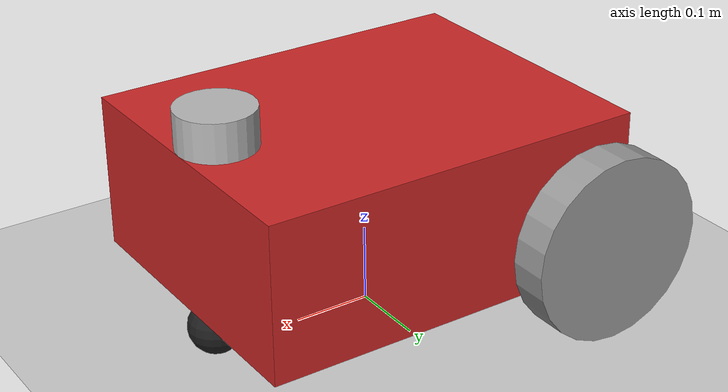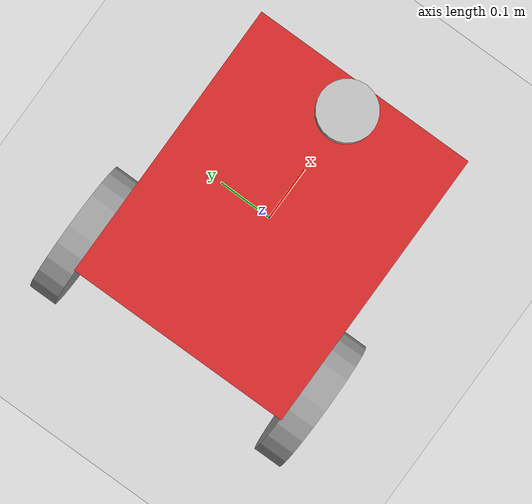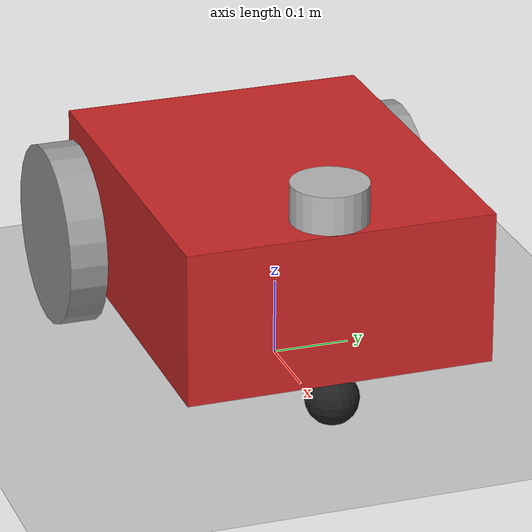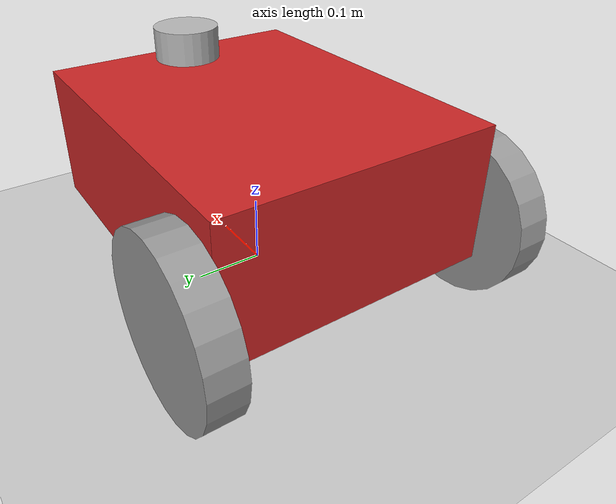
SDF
<sdf version="1.6">
 <world name="default">
  <light name="sun" type="directional">
   <pose>0 0 10 0 -0 0</pose>
   <diffuse>0.8 0.8 0.8 1</diffuse>
   <specular>0.2 0.2 0.2 1</specular>
   <attenuation>
    <range>1000</range>
    <constant>0.9</constant>
    <linear>0.01</linear>
    <quadratic>0.001</quadratic>
   </attenuation>
   <direction>-0.5 0.1 -0.9</direction>
  </light>
  <model name="ground_plane">
   <static>1</static>
   <link name="link">
    <collision name="collision">
     <geometry><plane><normal>0 0 1</normal><size>100 100</size></plane></geometry>
     <surface><friction><ode><mu>100</mu><mu2>50</mu2></ode></friction></surface>
    </collision>
    <visual name="visual">
     <cast_shadows>0</cast_shadows>
     <geometry><plane><normal>0 0 1</normal><size>100 100</size></plane></geometry>
     <material>
      <script><uri>file://media/materials/scripts/gazebo.material</uri><name>Gazebo/Grey</name></script>
     </material>
    </visual>
   </link>
  </model>
  <gravity>0 0 -9.8</gravity>
  <magnetic_field>6e-06 2.3e-05 -4.2e-05</magnetic_field>
  <atmosphere type="adiabatic"/>
  <physics name="default_physics" default="0" type="ode">
   <max_step_size>0.001</max_step_size>
   <real_time_factor>1</real_time_factor>
   <real_time_update_rate>1000</real_time_update_rate>
  </physics>
  <scene><ambient>0.4 0.4 0.4 1</ambient><background>0.7 0.7 0.7 1</background><shadows>1</shadows></scene>
  <audio><device>default</device></audio>
  <spherical_coordinates>
   <surface_model>EARTH_WGS84</surface_model>
   <latitude_deg>0</latitude_deg>
   <longitude_deg>0</longitude_deg>
   <elevation>0</elevation>
   <heading_deg>0</heading_deg>
  </spherical_coordinates>
  <model name="uv_urdf2">
   <link name="base_link">
    <inertial>
     <pose>0.000356 0 -0.000224 0 -0 0</pose>
     <mass>48.2484</mass>
     <inertia>
      <ixx>0.00145558</ixx>
      <ixy>0</ixy>
      <ixz>0.00231815</ixz>
      <iyy>0.00514745</iyy>
      <iyz>0</iyz>
      <izz>0.00369187</izz>
     </inertia>
    </inertial>
    <collision name="base_link_collision">
     <geometry><box><size>0.5 0.4 0.2</size></box></geometry>
     <surface>
      <contact><ode><kp>5e+06</kp><kd>10</kd><max_vel>0.1</max_vel><min_depth>0.001</min_depth></ode></contact>
      <friction><ode><mu>0.5</mu><mu2>0.5</mu2><fdir1>1 0 0</fdir1></ode></friction>
     </surface>
    </collision>
    <collision name="base_link_fixed_joint_lump__castor_link_collision_1">
     <pose>0.215 0 -0.135 0 -0 0</pose>
     <geometry><sphere><radius>0.035</radius></sphere></geometry>
     <surface>
      <contact><ode><kp>5e+06</kp><kd>10</kd><max_vel>0.1</max_vel><min_depth>0.001</min_depth></ode></contact>
      <friction><ode><mu>0.01</mu><mu2>0.01</mu2><fdir1>1 0 0</fdir1></ode></friction>
     </surface>
    </collision>
    <visual name="base_link_visual">
     <geometry><box><size>0.5 0.4 0.2</size></box></geometry>
     <material>
      <script><name>Gazebo/Red</name><uri>file://media/materials/scripts/gazebo.material</uri></script>
     </material>
    </visual>
    <visual name="base_link_fixed_joint_lump__castor_link_visual_1">
     <pose>0.215 0 -0.135 0 -0 0</pose>
     <geometry><sphere><radius>0.035</radius></sphere></geometry>
     <material>
      <script><name>Gazebo/Black</name><uri>file://media/materials/scripts/gazebo.material</uri></script>
     </material>
    </visual>
    <visual name="base_link_fixed_joint_lump__laser_link_visual_2">
     <pose>0.2 0 0.125 0 -0 0</pose>
     <geometry><cylinder><length>0.05</length><radius>0.05</radius></cylinder></geometry>
     <material><script><uri>__default__</uri><name>__default__</name></script></material>
    </visual>
    <sensor name="laser_sensor" type="ray">
     <visualize>1</visualize>
     <update_rate>10</update_rate>
     <ray>
      <scan>
       <horizontal>
        <samples>720</samples>
        <resolution>1</resolution>
        <min_angle>-1.5708</min_angle>
        <max_angle>1.5708</max_angle>
       </horizontal>
       <vertical><samples>1</samples><min_angle>0</min_angle><max_angle>0</max_angle></vertical>
      </scan>
      <range><min>0.15</min><max>25</max><resolution>0.01</resolution></range>
      <noise><type>gaussian</type><mean>0</mean><stddev>0.01</stddev></noise>
     </ray>
     <plugin name="gazebo_ros_laser_controller" filename="libgazebo_ros_laser.so">
      <topicName>/scan</topicName>
      <frameName>laser_link</frameName>
      <robotNamespace>/</robotNamespace>
     </plugin>
     <pose>0.2 0 0.125 0 -0 0</pose>
    </sensor>
   </link>
   <link name="lw_link">
    <pose>-0.2 0.225 -0.05 -1.5708 0 0</pose>
    <inertial>
     <mass>4</mass>
     <inertia><ixx>0</ixx><ixy>0</ixy><ixz>0</ixz><iyy>0</iyy><iyz>0</iyz><izz>0</izz></inertia>
    </inertial>
    <collision name="lw_link_collision">
     <geometry><cylinder><length>0.05</length><radius>0.12</radius></cylinder></geometry>
     <surface>
      <contact><ode><kp>5e+06</kp><kd>10</kd><max_vel>0.1</max_vel><min_depth>0.001</min_depth></ode></contact>
      <friction><ode><mu>0.8</mu><mu2>0.8</mu2><fdir1>1 0 0</fdir1></ode></friction>
     </surface>
    </collision>
    <visual name="lw_link_visual">
     <geometry><cylinder><length>0.05</length><radius>0.12</radius></cylinder></geometry>
     <material>
      <script><name>Gazebo/Gray</name><uri>file://media/materials/scripts/gazebo.material</uri></script>
     </material>
    </visual>
   </link>
   <joint name="lw_joint" type="revolute">
    <child>lw_link</child>
    <parent>base_link</parent>
    <axis>
     <xyz>0 1 -4e-06</xyz>
     <limit><lower>-1e+16</lower><upper>1e+16</upper></limit>
     <dynamics><spring_reference>0</spring_reference><spring_stiffness>0</spring_stiffness></dynamics>
     <use_parent_model_frame>1</use_parent_model_frame>
    </axis>
   </joint>
   <link name="rw_link">
    <pose>-0.2 -0.225 -0.05 1.5708 -0 0</pose>
    <inertial>
     <mass>4</mass>
     <inertia><ixx>0</ixx><ixy>0</ixy><ixz>0</ixz><iyy>0</iyy><iyz>0</iyz><izz>0</izz></inertia>
    </inertial>
    <collision name="rw_link_collision">
     <geometry><cylinder><length>0.05</length><radius>0.12</radius></cylinder></geometry>
     <surface>
      <contact><ode><kp>5e+06</kp><kd>10</kd><max_vel>0.1</max_vel><min_depth>0.001</min_depth></ode></contact>
      <friction><ode><mu>0.8</mu><mu2>0.8</mu2><fdir1>1 0 0</fdir1></ode></friction>
     </surface>
    </collision>
    <visual name="rw_link_visual">
     <geometry><cylinder><length>0.05</length><radius>0.12</radius></cylinder></geometry>
     <material>
      <script><name>Gazebo/Gray</name><uri>file://media/materials/scripts/gazebo.material</uri></script>
     </material>
    </visual>
   </link>
   <joint name="rw_joint" type="revolute">
    <child>rw_link</child>
    <parent>base_link</parent>
    <axis>
     <xyz>0 1 4e-06</xyz>
     <limit><lower>-1e+16</lower><upper>1e+16</upper></limit>
     <dynamics><spring_reference>0</spring_reference><spring_stiffness>0</spring_stiffness></dynamics>
     <use_parent_model_frame>1</use_parent_model_frame>
    </axis>
   </joint>
   <plugin name="amr_controller" filename="libgazebo_ros_diff_drive.so">
    <commandTopic>cmd_vel</commandTopic>
    <odometryTopic>odom</odometryTopic>
    <odometryFrame>odom</odometryFrame>
    <odometrySource>world</odometrySource>
    <publishOdomTF>1</publishOdomTF>
    <robotBaseFrame>base_link</robotBaseFrame>
    <publishWheelTF>0</publishWheelTF>
    <publishTf>1</publishTf>
    <publishWheelJointState>1</publishWheelJointState>
    <legacyMode>0</legacyMode>
    <updateRate>20</updateRate>
    <leftJoint>lw_joint</leftJoint>
    <rightJoint>rw_joint</rightJoint>
    <wheelSeparation>0.45</wheelSeparation>
    <wheelDiameter>0.24</wheelDiameter>
    <wheelAcceleration>0.5</wheelAcceleration>
    <wheelTorque>200</wheelTorque>
    <rosDebugLevel>na</rosDebugLevel>
    <cmd_vel_timeout>0.27</cmd_vel_timeout>
    <robotNamespace>/</robotNamespace>
   </plugin>
   <static>0</static>
   <plugin name="gazebo_ros_control" filename="libgazebo_ros_control.so">
    <robotNamespace>/</robotNamespace>
    <robotSimType>gazebo_ros_control/DefaultRobotHWSim</robotSimType>
   </plugin>
   <pose>0.00011 0 0.16897 0 7e-05 0</pose>
  </model>
 </world>
</sdf>
